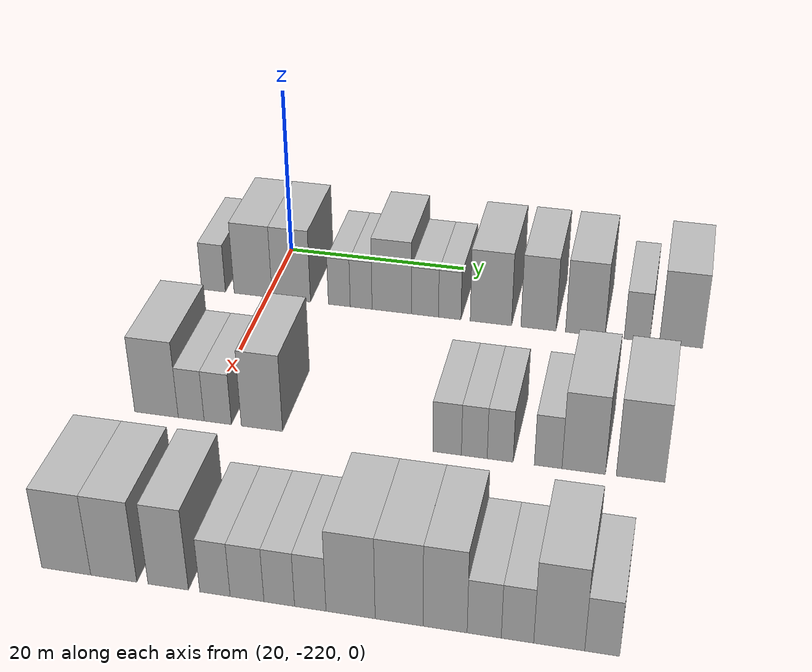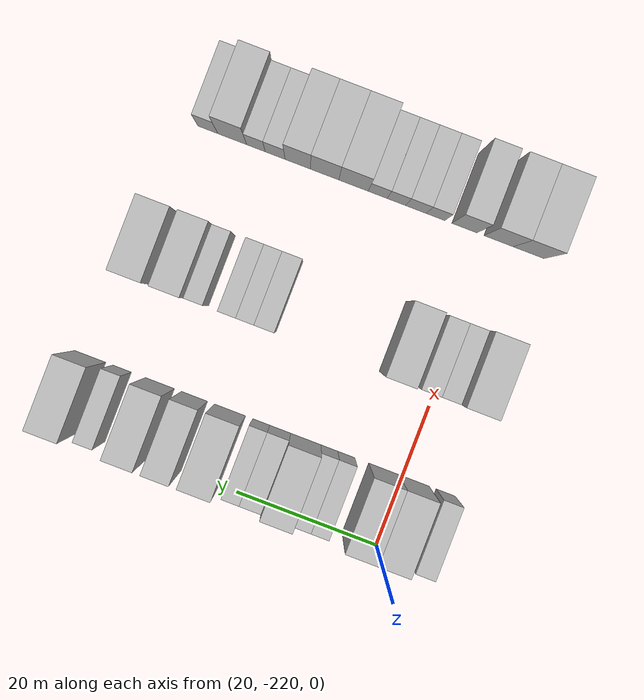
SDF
<sdf version="1.6">
 <world name="default">
  <model name="building_43">
   <static>1</static>
   <pose>25.0000 -226.1350 0 0.000000 0.000000 0.000000</pose>
   <link name="link">
    <pose>0 0 3.00 0 0 0</pose>
    <collision name="collision"><geometry><box><size>10.0000 2.7282 6.0000</size></box></geometry></collision>
    <visual name="visual">
     <cast_shadows>0</cast_shadows>
     <geometry><box><size>10.0000 2.7282 6.0000</size></box></geometry>
     <material>
      <script>
       <uri>model://HANNAS_wall/materials/scripts</uri>
       <uri>model://HANNAS_wall/materials/textures</uri>
       <name>vrc/HANNAS_wall</name>
      </script>
     </material>
    </visual>
   </link>
  </model>
  <model name="building_44">
   <static>1</static>
   <pose>25.0000 -221.6078 0 0.000000 0.000000 0.000000</pose>
   <link name="link">
    <pose>0 0 4.50 0 0 0</pose>
    <collision name="collision"><geometry><box><size>10.0000 4.3262 9.0000</size></box></geometry></collision>
    <visual name="visual">
     <cast_shadows>0</cast_shadows>
     <geometry><box><size>10.0000 4.3262 9.0000</size></box></geometry>
     <material>
      <script>
       <uri>model://HANNAS_wall/materials/scripts</uri>
       <uri>model://HANNAS_wall/materials/textures</uri>
       <name>vrc/HANNAS_wall</name>
      </script>
     </material>
    </visual>
   </link>
  </model>
  <model name="building_45">
   <static>1</static>
   <pose>25.0000 -217.2726 0 0.000000 0.000000 0.000000</pose>
   <link name="link">
    <pose>0 0 4.50 0 0 0</pose>
    <collision name="collision"><geometry><box><size>10.0000 4.3444 9.0000</size></box></geometry></collision>
    <visual name="visual">
     <cast_shadows>0</cast_shadows>
     <geometry><box><size>10.0000 4.3444 9.0000</size></box></geometry>
     <material>
      <script>
       <uri>model://HANNAS_wall/materials/scripts</uri>
       <uri>model://HANNAS_wall/materials/textures</uri>
       <name>vrc/HANNAS_wall</name>
      </script>
     </material>
    </visual>
   </link>
  </model>
  <model name="building_46">
   <static>1</static>
   <pose>25.0000 -211.8780 0 0.000000 0.000000 0.000000</pose>
   <link name="link">
    <pose>0 0 3.00 0 0 0</pose>
    <collision name="collision"><geometry><box><size>10.0000 2.4448 6.0000</size></box></geometry></collision>
    <visual name="visual">
     <cast_shadows>0</cast_shadows>
     <geometry><box><size>10.0000 2.4448 6.0000</size></box></geometry>
     <material>
      <script>
       <uri>model://HANNAS_wall/materials/scripts</uri>
       <uri>model://HANNAS_wall/materials/textures</uri>
       <name>vrc/HANNAS_wall</name>
      </script>
     </material>
    </visual>
   </link>
  </model>
  <model name="building_47">
   <static>1</static>
   <pose>25.0000 -209.4439 0 0.000000 0.000000 0.000000</pose>
   <link name="link">
    <pose>0 0 3.00 0 0 0</pose>
    <collision name="collision"><geometry><box><size>10.0000 2.4233 6.0000</size></box></geometry></collision>
    <visual name="visual">
     <cast_shadows>0</cast_shadows>
     <geometry><box><size>10.0000 2.4233 6.0000</size></box></geometry>
     <material>
      <script>
       <uri>model://HANNAS_wall/materials/scripts</uri>
       <uri>model://HANNAS_wall/materials/textures</uri>
       <name>vrc/HANNAS_wall</name>
      </script>
     </material>
    </visual>
   </link>
  </model>
  <model name="building_48">
   <static>1</static>
   <pose>25.0000 -206.0622 0 0.000000 0.000000 0.000000</pose>
   <link name="link">
    <pose>0 0 4.50 0 0 0</pose>
    <collision name="collision"><geometry><box><size>10.0000 4.3401 9.0000</size></box></geometry></collision>
    <visual name="visual">
     <cast_shadows>0</cast_shadows>
     <geometry><box><size>10.0000 4.3401 9.0000</size></box></geometry>
     <material>
      <script>
       <uri>model://HANNAS_wall/materials/scripts</uri>
       <uri>model://HANNAS_wall/materials/textures</uri>
       <name>vrc/HANNAS_wall</name>
      </script>
     </material>
    </visual>
   </link>
  </model>
  <model name="building_49">
   <static>1</static>
   <pose>25.0000 -202.4076 0 0.000000 0.000000 0.000000</pose>
   <link name="link">
    <pose>0 0 3.00 0 0 0</pose>
    <collision name="collision"><geometry><box><size>10.0000 2.9692 6.0000</size></box></geometry></collision>
    <visual name="visual">
     <cast_shadows>0</cast_shadows>
     <geometry><box><size>10.0000 2.9692 6.0000</size></box></geometry>
     <material>
      <script>
       <uri>model://HANNAS_wall/materials/scripts</uri>
       <uri>model://HANNAS_wall/materials/textures</uri>
       <name>vrc/HANNAS_wall</name>
      </script>
     </material>
    </visual>
   </link>
  </model>
  <model name="building_50">
   <static>1</static>
   <pose>25.0000 -199.6993 0 0.000000 0.000000 0.000000</pose>
   <link name="link">
    <pose>0 0 3.00 0 0 0</pose>
    <collision name="collision"><geometry><box><size>10.0000 2.4473 6.0000</size></box></geometry></collision>
    <visual name="visual">
     <cast_shadows>0</cast_shadows>
     <geometry><box><size>10.0000 2.4473 6.0000</size></box></geometry>
     <material>
      <script>
       <uri>model://HANNAS_wall/materials/scripts</uri>
       <uri>model://HANNAS_wall/materials/textures</uri>
       <name>vrc/HANNAS_wall</name>
      </script>
     </material>
    </visual>
   </link>
  </model>
  <model name="building_51">
   <static>1</static>
   <pose>25.0000 -195.2450 0 0.000000 0.000000 0.000000</pose>
   <link name="link">
    <pose>0 0 4.50 0 0 0</pose>
    <collision name="collision"><geometry><box><size>10.0000 4.4613 9.0000</size></box></geometry></collision>
    <visual name="visual">
     <cast_shadows>0</cast_shadows>
     <geometry><box><size>10.0000 4.4613 9.0000</size></box></geometry>
     <material>
      <script>
       <uri>model://HANNAS_wall/materials/scripts</uri>
       <uri>model://HANNAS_wall/materials/textures</uri>
       <name>vrc/HANNAS_wall</name>
      </script>
     </material>
    </visual>
   </link>
  </model>
  <model name="building_52">
   <static>1</static>
   <pose>25.0000 -190.1384 0 0.000000 0.000000 0.000000</pose>
   <link name="link">
    <pose>0 0 4.50 0 0 0</pose>
    <collision name="collision"><geometry><box><size>10.0000 3.7520 9.0000</size></box></geometry></collision>
    <visual name="visual">
     <cast_shadows>0</cast_shadows>
     <geometry><box><size>10.0000 3.7520 9.0000</size></box></geometry>
     <material>
      <script>
       <uri>model://HANNAS_wall/materials/scripts</uri>
       <uri>model://HANNAS_wall/materials/textures</uri>
       <name>vrc/HANNAS_wall</name>
      </script>
     </material>
    </visual>
   </link>
  </model>
  <model name="building_53">
   <static>1</static>
   <pose>25.0000 -185.1746 0 0.000000 0.000000 0.000000</pose>
   <link name="link">
    <pose>0 0 4.50 0 0 0</pose>
    <collision name="collision"><geometry><box><size>10.0000 4.1755 9.0000</size></box></geometry></collision>
    <visual name="visual">
     <cast_shadows>0</cast_shadows>
     <geometry><box><size>10.0000 4.1755 9.0000</size></box></geometry>
     <material>
      <script>
       <uri>model://HANNAS_wall/materials/scripts</uri>
       <uri>model://HANNAS_wall/materials/textures</uri>
       <name>vrc/HANNAS_wall</name>
      </script>
     </material>
    </visual>
   </link>
  </model>
  <model name="building_54">
   <static>1</static>
   <pose>25.0000 -179.7485 0 0.000000 0.000000 0.000000</pose>
   <link name="link">
    <pose>0 0 3.00 0 0 0</pose>
    <collision name="collision"><geometry><box><size>10.0000 2.6768 6.0000</size></box></geometry></collision>
    <visual name="visual">
     <cast_shadows>0</cast_shadows>
     <geometry><box><size>10.0000 2.6768 6.0000</size></box></geometry>
     <material>
      <script>
       <uri>model://HANNAS_wall/materials/scripts</uri>
       <uri>model://HANNAS_wall/materials/textures</uri>
       <name>vrc/HANNAS_wall</name>
      </script>
     </material>
    </visual>
   </link>
  </model>
  <model name="building_55">
   <static>1</static>
   <pose>25.0000 -175.1819 0 0.000000 0.000000 0.000000</pose>
   <link name="link">
    <pose>0 0 4.50 0 0 0</pose>
    <collision name="collision"><geometry><box><size>10.0000 4.4563 9.0000</size></box></geometry></collision>
    <visual name="visual">
     <cast_shadows>0</cast_shadows>
     <geometry><box><size>10.0000 4.4563 9.0000</size></box></geometry>
     <material>
      <script>
       <uri>model://HANNAS_wall/materials/scripts</uri>
       <uri>model://HANNAS_wall/materials/textures</uri>
       <name>vrc/HANNAS_wall</name>
      </script>
     </material>
    </visual>
   </link>
  </model>
  <model name="building_230">
   <static>1</static>
   <pose>47.0000 -224.7987 0 0.000000 0.000000 0.000000</pose>
   <link name="link">
    <pose>0 0 4.50 0 0 0</pose>
    <collision name="collision"><geometry><box><size>10.0000 4.4797 9.0000</size></box></geometry></collision>
    <visual name="visual">
     <cast_shadows>0</cast_shadows>
     <geometry><box><size>10.0000 4.4797 9.0000</size></box></geometry>
     <material>
      <script>
       <uri>model://HANNAS_wall/materials/scripts</uri>
       <uri>model://HANNAS_wall/materials/textures</uri>
       <name>vrc/HANNAS_wall</name>
      </script>
     </material>
    </visual>
   </link>
  </model>
  <model name="building_231">
   <static>1</static>
   <pose>47.0000 -221.2381 0 0.000000 0.000000 0.000000</pose>
   <link name="link">
    <pose>0 0 3.00 0 0 0</pose>
    <collision name="collision"><geometry><box><size>10.0000 2.6415 6.0000</size></box></geometry></collision>
    <visual name="visual">
     <cast_shadows>0</cast_shadows>
     <geometry><box><size>10.0000 2.6415 6.0000</size></box></geometry>
     <material>
      <script>
       <uri>model://HANNAS_wall/materials/scripts</uri>
       <uri>model://HANNAS_wall/materials/textures</uri>
       <name>vrc/HANNAS_wall</name>
      </script>
     </material>
    </visual>
   </link>
  </model>
  <model name="building_232">
   <static>1</static>
   <pose>47.0000 -218.5318 0 0.000000 0.000000 0.000000</pose>
   <link name="link">
    <pose>0 0 3.00 0 0 0</pose>
    <collision name="collision"><geometry><box><size>10.0000 2.7711 6.0000</size></box></geometry></collision>
    <visual name="visual">
     <cast_shadows>0</cast_shadows>
     <geometry><box><size>10.0000 2.7711 6.0000</size></box></geometry>
     <material>
      <script>
       <uri>model://HANNAS_wall/materials/scripts</uri>
       <uri>model://HANNAS_wall/materials/textures</uri>
       <name>vrc/HANNAS_wall</name>
      </script>
     </material>
    </visual>
   </link>
  </model>
  <model name="building_233">
   <static>1</static>
   <pose>47.0000 -214.0724 0 0.000000 0.000000 0.000000</pose>
   <link name="link">
    <pose>0 0 4.50 0 0 0</pose>
    <collision name="collision"><geometry><box><size>10.0000 4.1477 9.0000</size></box></geometry></collision>
    <visual name="visual">
     <cast_shadows>0</cast_shadows>
     <geometry><box><size>10.0000 4.1477 9.0000</size></box></geometry>
     <material>
      <script>
       <uri>model://HANNAS_wall/materials/scripts</uri>
       <uri>model://HANNAS_wall/materials/textures</uri>
       <name>vrc/HANNAS_wall</name>
      </script>
     </material>
    </visual>
   </link>
  </model>
  <model name="building_234">
   <static>1</static>
   <pose>47.0000 -195.8662 0 0.000000 0.000000 0.000000</pose>
   <link name="link">
    <pose>0 0 3.00 0 0 0</pose>
    <collision name="collision"><geometry><box><size>10.0000 2.7549 6.0000</size></box></geometry></collision>
    <visual name="visual">
     <cast_shadows>0</cast_shadows>
     <geometry><box><size>10.0000 2.7549 6.0000</size></box></geometry>
     <material>
      <script>
       <uri>model://HANNAS_wall/materials/scripts</uri>
       <uri>model://HANNAS_wall/materials/textures</uri>
       <name>vrc/HANNAS_wall</name>
      </script>
     </material>
    </visual>
   </link>
  </model>
  <model name="building_235">
   <static>1</static>
   <pose>47.0000 -193.2576 0 0.000000 0.000000 0.000000</pose>
   <link name="link">
    <pose>0 0 3.00 0 0 0</pose>
    <collision name="collision"><geometry><box><size>10.0000 2.4623 6.0000</size></box></geometry></collision>
    <visual name="visual">
     <cast_shadows>0</cast_shadows>
     <geometry><box><size>10.0000 2.4623 6.0000</size></box></geometry>
     <material>
      <script>
       <uri>model://HANNAS_wall/materials/scripts</uri>
       <uri>model://HANNAS_wall/materials/textures</uri>
       <name>vrc/HANNAS_wall</name>
      </script>
     </material>
    </visual>
   </link>
  </model>
  <model name="building_236">
   <static>1</static>
   <pose>47.0000 -190.7903 0 0.000000 0.000000 0.000000</pose>
   <link name="link">
    <pose>0 0 3.00 0 0 0</pose>
    <collision name="collision"><geometry><box><size>10.0000 2.4723 6.0000</size></box></geometry></collision>
    <visual name="visual">
     <cast_shadows>0</cast_shadows>
     <geometry><box><size>10.0000 2.4723 6.0000</size></box></geometry>
     <material>
      <script>
       <uri>model://HANNAS_wall/materials/scripts</uri>
       <uri>model://HANNAS_wall/materials/textures</uri>
       <name>vrc/HANNAS_wall</name>
      </script>
     </material>
    </visual>
   </link>
  </model>
  <model name="building_237">
   <static>1</static>
   <pose>47.0000 -186.2572 0 0.000000 0.000000 0.000000</pose>
   <link name="link">
    <pose>0 0 3.00 0 0 0</pose>
    <collision name="collision"><geometry><box><size>10.0000 2.5938 6.0000</size></box></geometry></collision>
    <visual name="visual">
     <cast_shadows>0</cast_shadows>
     <geometry><box><size>10.0000 2.5938 6.0000</size></box></geometry>
     <material>
      <script>
       <uri>model://HANNAS_wall/materials/scripts</uri>
       <uri>model://HANNAS_wall/materials/textures</uri>
       <name>vrc/HANNAS_wall</name>
      </script>
     </material>
    </visual>
   </link>
  </model>
  <model name="building_238">
   <static>1</static>
   <pose>47.0000 -182.9309 0 0.000000 0.000000 0.000000</pose>
   <link name="link">
    <pose>0 0 4.50 0 0 0</pose>
    <collision name="collision"><geometry><box><size>10.0000 4.0588 9.0000</size></box></geometry></collision>
    <visual name="visual">
     <cast_shadows>0</cast_shadows>
     <geometry><box><size>10.0000 4.0588 9.0000</size></box></geometry>
     <material>
      <script>
       <uri>model://HANNAS_wall/materials/scripts</uri>
       <uri>model://HANNAS_wall/materials/textures</uri>
       <name>vrc/HANNAS_wall</name>
      </script>
     </material>
    </visual>
   </link>
  </model>
  <model name="building_239">
   <static>1</static>
   <pose>47.0000 -177.6561 0 0.000000 0.000000 0.000000</pose>
   <link name="link">
    <pose>0 0 4.50 0 0 0</pose>
    <collision name="collision"><geometry><box><size>10.0000 4.4907 9.0000</size></box></geometry></collision>
    <visual name="visual">
     <cast_shadows>0</cast_shadows>
     <geometry><box><size>10.0000 4.4907 9.0000</size></box></geometry>
     <material>
      <script>
       <uri>model://HANNAS_wall/materials/scripts</uri>
       <uri>model://HANNAS_wall/materials/textures</uri>
       <name>vrc/HANNAS_wall</name>
      </script>
     </material>
    </visual>
   </link>
  </model>
  <model name="building_421">
   <static>1</static>
   <pose>69.0000 -225.0023 0 0.000000 0.000000 0.000000</pose>
   <link name="link">
    <pose>0 0 4.50 0 0 0</pose>
    <collision name="collision"><geometry><box><size>10.0000 4.4633 9.0000</size></box></geometry></collision>
    <visual name="visual">
     <cast_shadows>0</cast_shadows>
     <geometry><box><size>10.0000 4.4633 9.0000</size></box></geometry>
     <material>
      <script>
       <uri>model://HANNAS_wall/materials/scripts</uri>
       <uri>model://HANNAS_wall/materials/textures</uri>
       <name>vrc/HANNAS_wall</name>
      </script>
     </material>
    </visual>
   </link>
  </model>
  <model name="building_422">
   <static>1</static>
   <pose>69.0000 -220.6876 0 0.000000 0.000000 0.000000</pose>
   <link name="link">
    <pose>0 0 4.50 0 0 0</pose>
    <collision name="collision"><geometry><box><size>10.0000 4.1661 9.0000</size></box></geometry></collision>
    <visual name="visual">
     <cast_shadows>0</cast_shadows>
     <geometry><box><size>10.0000 4.1661 9.0000</size></box></geometry>
     <material>
      <script>
       <uri>model://HANNAS_wall/materials/scripts</uri>
       <uri>model://HANNAS_wall/materials/textures</uri>
       <name>vrc/HANNAS_wall</name>
      </script>
     </material>
    </visual>
   </link>
  </model>
  <model name="building_423">
   <static>1</static>
   <pose>69.0000 -215.8008 0 0.000000 0.000000 0.000000</pose>
   <link name="link">
    <pose>0 0 4.50 0 0 0</pose>
    <collision name="collision"><geometry><box><size>10.0000 3.6074 9.0000</size></box></geometry></collision>
    <visual name="visual">
     <cast_shadows>0</cast_shadows>
     <geometry><box><size>10.0000 3.6074 9.0000</size></box></geometry>
     <material>
      <script>
       <uri>model://HANNAS_wall/materials/scripts</uri>
       <uri>model://HANNAS_wall/materials/textures</uri>
       <name>vrc/HANNAS_wall</name>
      </script>
     </material>
    </visual>
   </link>
  </model>
  <model name="building_424">
   <static>1</static>
   <pose>69.0000 -211.6582 0 0.000000 0.000000 0.000000</pose>
   <link name="link">
    <pose>0 0 3.00 0 0 0</pose>
    <collision name="collision"><geometry><box><size>10.0000 2.6779 6.0000</size></box></geometry></collision>
    <visual name="visual">
     <cast_shadows>0</cast_shadows>
     <geometry><box><size>10.0000 2.6779 6.0000</size></box></geometry>
     <material>
      <script>
       <uri>model://HANNAS_wall/materials/scripts</uri>
       <uri>model://HANNAS_wall/materials/textures</uri>
       <name>vrc/HANNAS_wall</name>
      </script>
     </material>
    </visual>
   </link>
  </model>
  <model name="building_425">
   <static>1</static>
   <pose>69.0000 -208.8410 0 0.000000 0.000000 0.000000</pose>
   <link name="link">
    <pose>0 0 3.00 0 0 0</pose>
    <collision name="collision"><geometry><box><size>10.0000 2.9564 6.0000</size></box></geometry></collision>
    <visual name="visual">
     <cast_shadows>0</cast_shadows>
     <geometry><box><size>10.0000 2.9564 6.0000</size></box></geometry>
     <material>
      <script>
       <uri>model://HANNAS_wall/materials/scripts</uri>
       <uri>model://HANNAS_wall/materials/textures</uri>
       <name>vrc/HANNAS_wall</name>
      </script>
     </material>
    </visual>
   </link>
  </model>
  <model name="building_426">
   <static>1</static>
   <pose>69.0000 -206.0336 0 0.000000 0.000000 0.000000</pose>
   <link name="link">
    <pose>0 0 3.00 0 0 0</pose>
    <collision name="collision"><geometry><box><size>10.0000 2.6584 6.0000</size></box></geometry></collision>
    <visual name="visual">
     <cast_shadows>0</cast_shadows>
     <geometry><box><size>10.0000 2.6584 6.0000</size></box></geometry>
     <material>
      <script>
       <uri>model://HANNAS_wall/materials/scripts</uri>
       <uri>model://HANNAS_wall/materials/textures</uri>
       <name>vrc/HANNAS_wall</name>
      </script>
     </material>
    </visual>
   </link>
  </model>
  <model name="building_427">
   <static>1</static>
   <pose>69.0000 -203.3512 0 0.000000 0.000000 0.000000</pose>
   <link name="link">
    <pose>0 0 3.00 0 0 0</pose>
    <collision name="collision"><geometry><box><size>10.0000 2.7062 6.0000</size></box></geometry></collision>
    <visual name="visual">
     <cast_shadows>0</cast_shadows>
     <geometry><box><size>10.0000 2.7062 6.0000</size></box></geometry>
     <material>
      <script>
       <uri>model://HANNAS_wall/materials/scripts</uri>
       <uri>model://HANNAS_wall/materials/textures</uri>
       <name>vrc/HANNAS_wall</name>
      </script>
     </material>
    </visual>
   </link>
  </model>
  <model name="building_428">
   <static>1</static>
   <pose>69.0000 -199.8991 0 0.000000 0.000000 0.000000</pose>
   <link name="link">
    <pose>0 0 4.50 0 0 0</pose>
    <collision name="collision"><geometry><box><size>10.0000 4.1981 9.0000</size></box></geometry></collision>
    <visual name="visual">
     <cast_shadows>0</cast_shadows>
     <geometry><box><size>10.0000 4.1981 9.0000</size></box></geometry>
     <material>
      <script>
       <uri>model://HANNAS_wall/materials/scripts</uri>
       <uri>model://HANNAS_wall/materials/textures</uri>
       <name>vrc/HANNAS_wall</name>
      </script>
     </material>
    </visual>
   </link>
  </model>
  <model name="building_429">
   <static>1</static>
   <pose>69.0000 -195.7734 0 0.000000 0.000000 0.000000</pose>
   <link name="link">
    <pose>0 0 4.50 0 0 0</pose>
    <collision name="collision"><geometry><box><size>10.0000 4.0534 9.0000</size></box></geometry></collision>
    <visual name="visual">
     <cast_shadows>0</cast_shadows>
     <geometry><box><size>10.0000 4.0534 9.0000</size></box></geometry>
     <material>
      <script>
       <uri>model://HANNAS_wall/materials/scripts</uri>
       <uri>model://HANNAS_wall/materials/textures</uri>
       <name>vrc/HANNAS_wall</name>
      </script>
     </material>
    </visual>
   </link>
  </model>
  <model name="building_430">
   <static>1</static>
   <pose>69.0000 -191.9109 0 0.000000 0.000000 0.000000</pose>
   <link name="link">
    <pose>0 0 4.50 0 0 0</pose>
    <collision name="collision"><geometry><box><size>10.0000 3.6714 9.0000</size></box></geometry></collision>
    <visual name="visual">
     <cast_shadows>0</cast_shadows>
     <geometry><box><size>10.0000 3.6714 9.0000</size></box></geometry>
     <material>
      <script>
       <uri>model://HANNAS_wall/materials/scripts</uri>
       <uri>model://HANNAS_wall/materials/textures</uri>
       <name>vrc/HANNAS_wall</name>
      </script>
     </material>
    </visual>
   </link>
  </model>
  <model name="building_431">
   <static>1</static>
   <pose>69.0000 -188.6621 0 0.000000 0.000000 0.000000</pose>
   <link name="link">
    <pose>0 0 3.00 0 0 0</pose>
    <collision name="collision"><geometry><box><size>10.0000 2.8263 6.0000</size></box></geometry></collision>
    <visual name="visual">
     <cast_shadows>0</cast_shadows>
     <geometry><box><size>10.0000 2.8263 6.0000</size></box></geometry>
     <material>
      <script>
       <uri>model://HANNAS_wall/materials/scripts</uri>
       <uri>model://HANNAS_wall/materials/textures</uri>
       <name>vrc/HANNAS_wall</name>
      </script>
     </material>
    </visual>
   </link>
  </model>
  <model name="building_432">
   <static>1</static>
   <pose>69.0000 -185.9165 0 0.000000 0.000000 0.000000</pose>
   <link name="link">
    <pose>0 0 3.00 0 0 0</pose>
    <collision name="collision"><geometry><box><size>10.0000 2.6648 6.0000</size></box></geometry></collision>
    <visual name="visual">
     <cast_shadows>0</cast_shadows>
     <geometry><box><size>10.0000 2.6648 6.0000</size></box></geometry>
     <material>
      <script>
       <uri>model://HANNAS_wall/materials/scripts</uri>
       <uri>model://HANNAS_wall/materials/textures</uri>
       <name>vrc/HANNAS_wall</name>
      </script>
     </material>
    </visual>
   </link>
  </model>
  <model name="building_433">
   <static>1</static>
   <pose>69.0000 -182.5091 0 0.000000 0.000000 0.000000</pose>
   <link name="link">
    <pose>0 0 4.50 0 0 0</pose>
    <collision name="collision"><geometry><box><size>10.0000 4.1502 9.0000</size></box></geometry></collision>
    <visual name="visual">
     <cast_shadows>0</cast_shadows>
     <geometry><box><size>10.0000 4.1502 9.0000</size></box></geometry>
     <material>
      <script>
       <uri>model://HANNAS_wall/materials/scripts</uri>
       <uri>model://HANNAS_wall/materials/textures</uri>
       <name>vrc/HANNAS_wall</name>
      </script>
     </material>
    </visual>
   </link>
  </model>
  <model name="building_434">
   <static>1</static>
   <pose>69.0000 -179.0233 0 0.000000 0.000000 0.000000</pose>
   <link name="link">
    <pose>0 0 3.00 0 0 0</pose>
    <collision name="collision"><geometry><box><size>10.0000 2.8214 6.0000</size></box></geometry></collision>
    <visual name="visual">
     <cast_shadows>0</cast_shadows>
     <geometry><box><size>10.0000 2.8214 6.0000</size></box></geometry>
     <material>
      <script>
       <uri>model://HANNAS_wall/materials/scripts</uri>
       <uri>model://HANNAS_wall/materials/textures</uri>
       <name>vrc/HANNAS_wall</name>
      </script>
     </material>
    </visual>
   </link>
  </model>
 </world>
</sdf>
